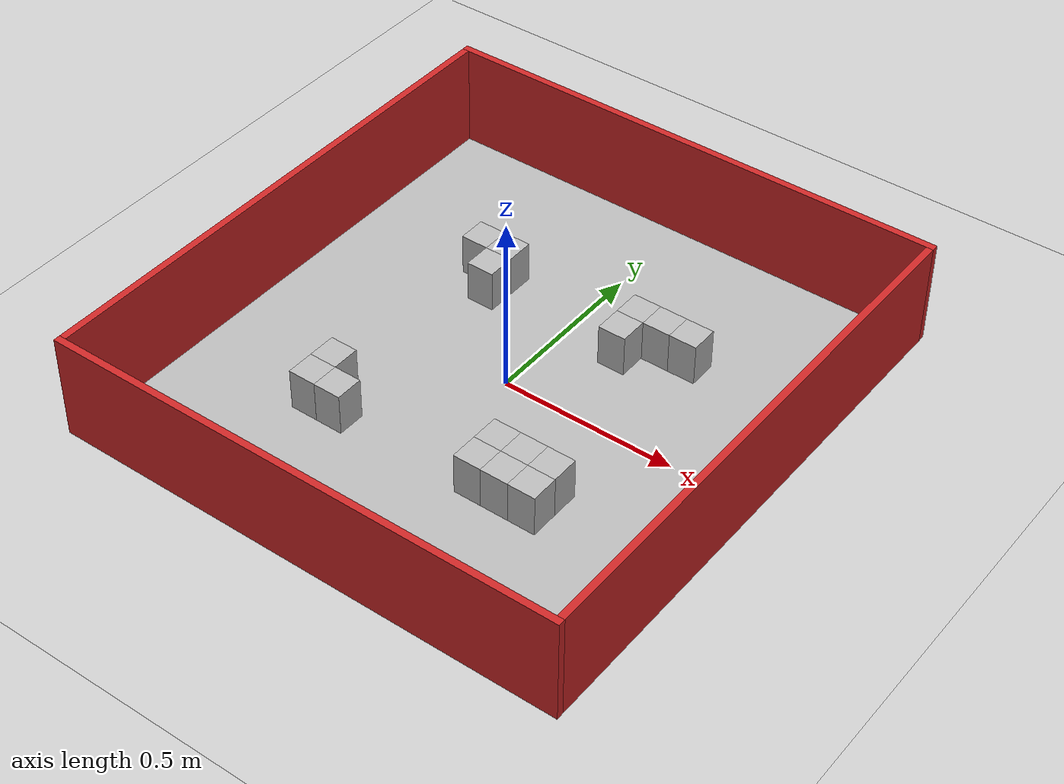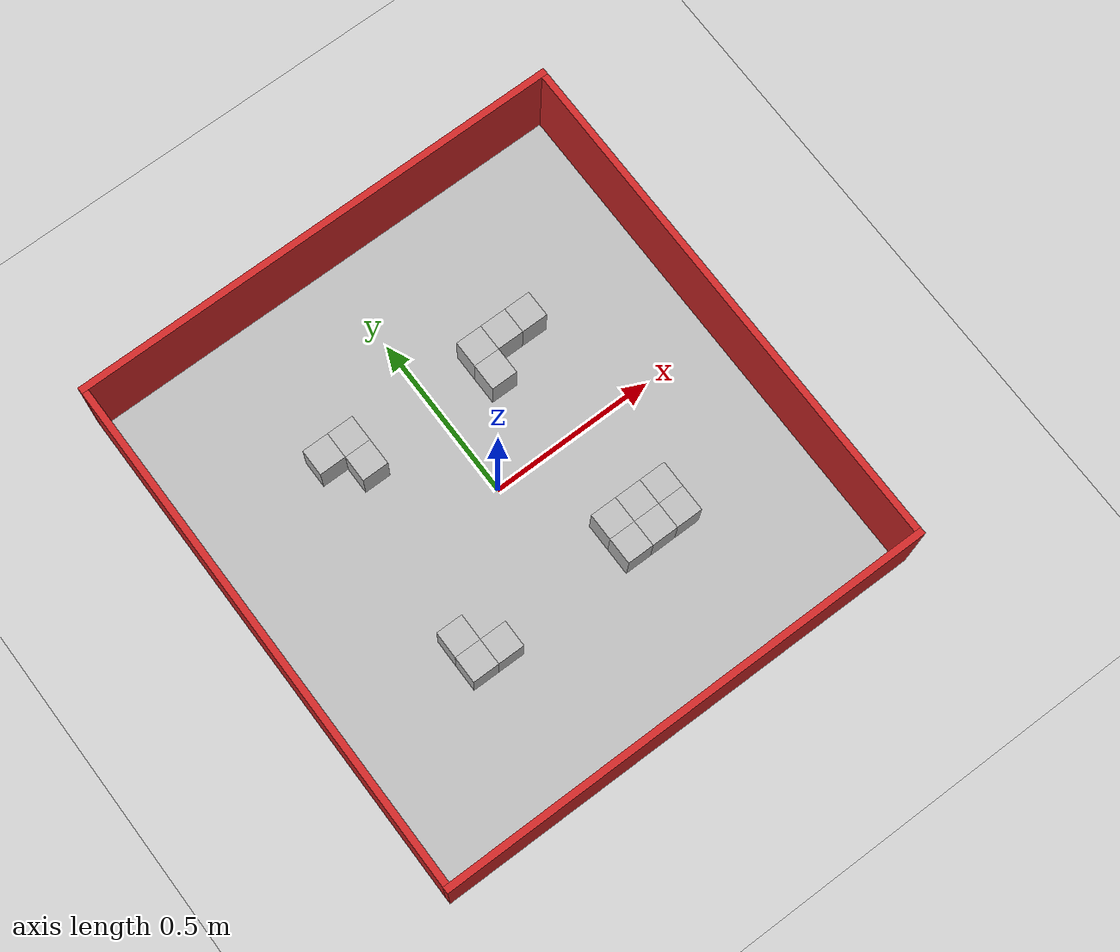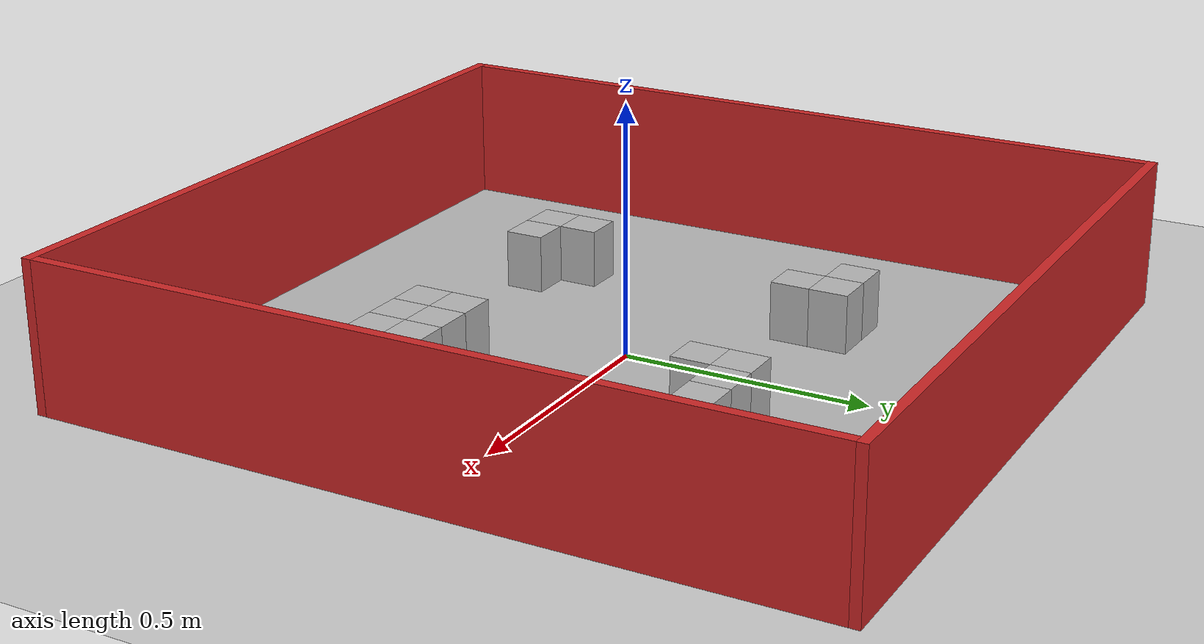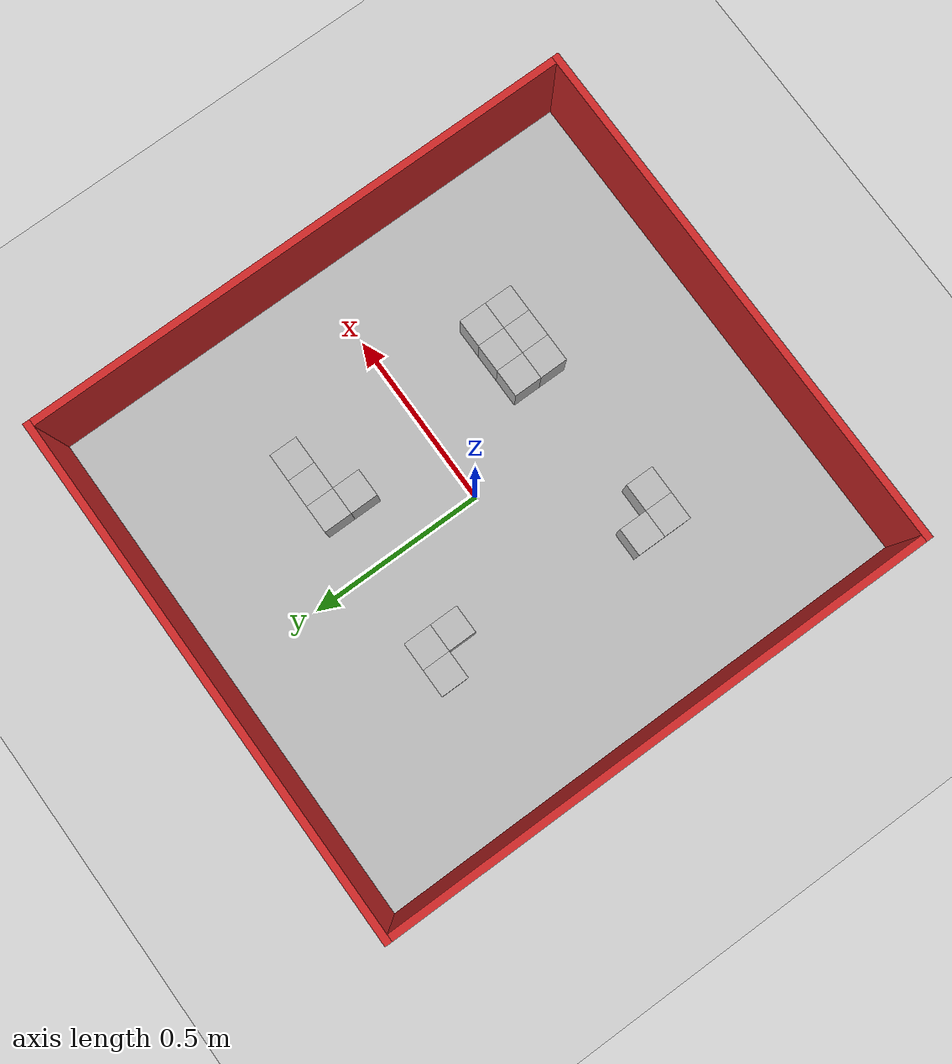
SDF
<?xml version="1.0"?>
<sdf version="1.6">
  <world name="laboratorio_real">

    <!-- ── Física ─────────────────────────────────────────────────── -->
    <physics type="ode">
      <real_time_update_rate>1000.0</real_time_update_rate>
      <max_step_size>0.001</max_step_size>
      <real_time_factor>1</real_time_factor>
    </physics>

    <!-- ── Plugins ────────────────────────────────────────────────── -->
    <plugin name="gazebo_ros_factory" filename="libgazebo_ros_factory.so"/>
    <plugin name="gazebo_ros_init"    filename="libgazebo_ros_init.so"/>

    <!-- ── Iluminación ───────────────────────────────────────────── -->
    <light name="sun" type="directional">
      <cast_shadows>true</cast_shadows>
      <pose>0 0 10 0 0 0</pose>
      <diffuse>0.8 0.8 0.8 1</diffuse>
      <specular>0.1 0.1 0.1 1</specular>
      <direction>-0.5 0.1 -0.9</direction>
    </light>

    <!-- ── Suelo de Gazebo (plano de física) ─────────────────────── -->
    <model name="ground_plane">
      <static>true</static>
      <link name="link">
        <collision name="collision">
          <geometry><plane><normal>0 0 1</normal></plane></geometry>
        </collision>
        <visual name="visual">
          <geometry><plane><normal>0 0 1</normal><size>10 10</size></plane></geometry>
          <material><script>
            <uri>file://media/materials/scripts/gazebo.material</uri>
            <name>Gazebo/Grey</name>
          </script></material>
        </visual>
      </link>
    </model>

    <!-- ── Recinto del laboratorio ───────────────────────────────── -->
    <include>
      <uri>model://kalman_lab_recinto</uri>
      <name>kalman_lab_recinto</name>
      <pose>0 0 0 0 0 0</pose>
    </include>

    <!-- ── Edificios (poses placeholder — ajustar manualmente) ───── -->
    <!--
      Cuadrante superior-izquierdo  → X-, Y+
      Cuadrante superior-derecho   → X+, Y+
      Cuadrante inferior-izquierdo → X-, Y-
      Cuadrante inferior-derecho   → X+, Y-
    -->

    <include>
      <uri>model://kalman_edificio_A</uri>
      <name>kalman_edificio_A</name>
      <pose>0.255388 0.284444 0 0 0 -1.5708</pose>
    </include>

    <include>
      <uri>model://kalman_edificio_B</uri>
      <name>kalman_edificio_B</name>
      <pose>0.255112 -0.303523 0 0 0 -1.5708</pose>
    </include>

    <include>
      <uri>model://kalman_edificio_C</uri>
      <name>kalman_edificio_C</name>
      <pose>-0.284461 0.285943 0 0 0 0</pose>
    </include>

    <include>
      <uri>model://kalman_edificio_D</uri>
      <name>kalman_edificio_D</name>
      <pose>-0.290682 -0.313646 0 0 0 1.56789</pose>
    </include>

    <gui fullscreen="0">
      <camera name="user_camera">
        <pose>-0.003514 -0.180003 2.74018 0 1.5698 0.000197</pose>
        <view_controller>orbit</view_controller>
        <projection_type>perspective</projection_type>
      </camera>
    </gui>

  </world>
</sdf>

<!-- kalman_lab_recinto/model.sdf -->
<sdf version="1.6">
  <model name="kalman_lab_recinto">
    <static>true</static>
    <link name="link">

      <!-- ── SUELO ─────────────────────────────────────────────── -->
      <collision name="col_suelo">
        <pose>0 0 0.0005 0 0 0</pose>
        <geometry><box><size>1.45 1.55 0.001</size></box></geometry>
      </collision>
      <visual name="vis_suelo">
        <pose>0 0 0.0005 0 0 0</pose>
        <geometry><box><size>1.45 1.55 0.001</size></box></geometry>
        <material><script>
          <uri>model://kalman_lab_recinto/materials/scripts</uri>
          <uri>model://kalman_lab_recinto/materials/textures</uri>
          <name>kalman_lab/Suelo</name>
        </script></material>
      </visual>

      <!-- ── PARED NORTE (Y+) ──────────────────────────────────── -->
      <collision name="col_norte">
        <pose>0 0.785 0.15 0 0 0</pose>
        <geometry><box><size>1.49 0.02 0.30</size></box></geometry>
      </collision>
      <visual name="vis_norte">
        <pose>0 0.785 0.15 0 0 0</pose>
        <geometry><box><size>1.49 0.02 0.30</size></box></geometry>
        <material><script>
          <uri>model://kalman_lab_recinto/materials/scripts</uri>
          <uri>model://kalman_lab_recinto/materials/textures</uri>
          <name>kalman_lab/Pared</name>
        </script></material>
      </visual>

      <!-- ── PARED SUR (Y-) ────────────────────────────────────── -->
      <collision name="col_sur">
        <pose>0 -0.785 0.15 0 0 0</pose>
        <geometry><box><size>1.49 0.02 0.30</size></box></geometry>
      </collision>
      <visual name="vis_sur">
        <pose>0 -0.785 0.15 0 0 0</pose>
        <geometry><box><size>1.49 0.02 0.30</size></box></geometry>
        <material><script>
          <uri>model://kalman_lab_recinto/materials/scripts</uri>
          <uri>model://kalman_lab_recinto/materials/textures</uri>
          <name>kalman_lab/Pared</name>
        </script></material>
      </visual>

      <!-- ── PARED ESTE (X+) ───────────────────────────────────── -->
      <collision name="col_este">
        <pose>0.735 0 0.15 0 0 0</pose>
        <geometry><box><size>0.02 1.55 0.30</size></box></geometry>
      </collision>
      <visual name="vis_este">
        <pose>0.735 0 0.15 0 0 0</pose>
        <geometry><box><size>0.02 1.55 0.30</size></box></geometry>
        <material><script>
          <uri>model://kalman_lab_recinto/materials/scripts</uri>
          <uri>model://kalman_lab_recinto/materials/textures</uri>
          <name>kalman_lab/Pared</name>
        </script></material>
      </visual>

      <!-- ── PARED OESTE (X-) ──────────────────────────────────── -->
      <collision name="col_oeste">
        <pose>-0.735 0 0.15 0 0 0</pose>
        <geometry><box><size>0.02 1.55 0.30</size></box></geometry>
      </collision>
      <visual name="vis_oeste">
        <pose>-0.735 0 0.15 0 0 0</pose>
        <geometry><box><size>0.02 1.55 0.30</size></box></geometry>
        <material><script>
          <uri>model://kalman_lab_recinto/materials/scripts</uri>
          <uri>model://kalman_lab_recinto/materials/textures</uri>
          <name>kalman_lab/Pared</name>
        </script></material>
      </visual>

    </link>
  </model>
</sdf>

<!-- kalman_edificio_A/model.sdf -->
<!--
  Planta (vista superior) — cada celda = 8x8 cm
    X .
    X .
    X X
-->
<sdf version="1.6">
  <model name="kalman_edificio_A">
    <static>true</static>
    <link name="link">

      <!-- caja 0: superior izquierda -->
      <collision name="col_0"><pose>-0.04  0.08 0.06 0 0 0</pose>
        <geometry><box><size>0.08 0.08 0.12</size></box></geometry>
      </collision>
      <visual name="vis_0"><pose>-0.04  0.08 0.06 0 0 0</pose>
        <geometry><box><size>0.08 0.08 0.12</size></box></geometry>
        <material><script>
          <uri>model://kalman_lab_box/materials/scripts</uri>
          <uri>model://kalman_lab_box/materials/textures</uri>
          <name>kalman_lab/Melamina</name>
        </script></material>
      </visual>

      <!-- caja 1: central izquierda -->
      <collision name="col_1"><pose>-0.04  0.00 0.06 0 0 0</pose>
        <geometry><box><size>0.08 0.08 0.12</size></box></geometry>
      </collision>
      <visual name="vis_1"><pose>-0.04  0.00 0.06 0 0 0</pose>
        <geometry><box><size>0.08 0.08 0.12</size></box></geometry>
        <material><script>
          <uri>model://kalman_lab_box/materials/scripts</uri>
          <uri>model://kalman_lab_box/materials/textures</uri>
          <name>kalman_lab/Melamina</name>
        </script></material>
      </visual>

      <!-- caja 2: inferior izquierda -->
      <collision name="col_2"><pose>-0.04 -0.08 0.06 0 0 0</pose>
        <geometry><box><size>0.08 0.08 0.12</size></box></geometry>
      </collision>
      <visual name="vis_2"><pose>-0.04 -0.08 0.06 0 0 0</pose>
        <geometry><box><size>0.08 0.08 0.12</size></box></geometry>
        <material><script>
          <uri>model://kalman_lab_box/materials/scripts</uri>
          <uri>model://kalman_lab_box/materials/textures</uri>
          <name>kalman_lab/Melamina</name>
        </script></material>
      </visual>

      <!-- caja 3: inferior derecha -->
      <collision name="col_3"><pose> 0.04 -0.08 0.06 0 0 0</pose>
        <geometry><box><size>0.08 0.08 0.12</size></box></geometry>
      </collision>
      <visual name="vis_3"><pose> 0.04 -0.08 0.06 0 0 0</pose>
        <geometry><box><size>0.08 0.08 0.12</size></box></geometry>
        <material><script>
          <uri>model://kalman_lab_box/materials/scripts</uri>
          <uri>model://kalman_lab_box/materials/textures</uri>
          <name>kalman_lab/Melamina</name>
        </script></material>
      </visual>

    </link>
  </model>
</sdf>

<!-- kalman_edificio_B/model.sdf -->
<!--
  Planta (vista superior) — cada celda = 8x8 cm
    X X
    X X
    X X
-->
<sdf version="1.6">
  <model name="kalman_edificio_B">
    <static>true</static>
    <link name="link">

      <collision name="col_0"><pose>-0.04  0.08 0.06 0 0 0</pose>
        <geometry><box><size>0.08 0.08 0.12</size></box></geometry>
      </collision>
      <visual name="vis_0"><pose>-0.04  0.08 0.06 0 0 0</pose>
        <geometry><box><size>0.08 0.08 0.12</size></box></geometry>
        <material><script>
          <uri>model://kalman_lab_box/materials/scripts</uri>
          <uri>model://kalman_lab_box/materials/textures</uri>
          <name>kalman_lab/Melamina</name>
        </script></material>
      </visual>

      <collision name="col_1"><pose> 0.04  0.08 0.06 0 0 0</pose>
        <geometry><box><size>0.08 0.08 0.12</size></box></geometry>
      </collision>
      <visual name="vis_1"><pose> 0.04  0.08 0.06 0 0 0</pose>
        <geometry><box><size>0.08 0.08 0.12</size></box></geometry>
        <material><script>
          <uri>model://kalman_lab_box/materials/scripts</uri>
          <uri>model://kalman_lab_box/materials/textures</uri>
          <name>kalman_lab/Melamina</name>
        </script></material>
      </visual>

      <collision name="col_2"><pose>-0.04  0.00 0.06 0 0 0</pose>
        <geometry><box><size>0.08 0.08 0.12</size></box></geometry>
      </collision>
      <visual name="vis_2"><pose>-0.04  0.00 0.06 0 0 0</pose>
        <geometry><box><size>0.08 0.08 0.12</size></box></geometry>
        <material><script>
          <uri>model://kalman_lab_box/materials/scripts</uri>
          <uri>model://kalman_lab_box/materials/textures</uri>
          <name>kalman_lab/Melamina</name>
        </script></material>
      </visual>

      <collision name="col_3"><pose> 0.04  0.00 0.06 0 0 0</pose>
        <geometry><box><size>0.08 0.08 0.12</size></box></geometry>
      </collision>
      <visual name="vis_3"><pose> 0.04  0.00 0.06 0 0 0</pose>
        <geometry><box><size>0.08 0.08 0.12</size></box></geometry>
        <material><script>
          <uri>model://kalman_lab_box/materials/scripts</uri>
          <uri>model://kalman_lab_box/materials/textures</uri>
          <name>kalman_lab/Melamina</name>
        </script></material>
      </visual>

      <collision name="col_4"><pose>-0.04 -0.08 0.06 0 0 0</pose>
        <geometry><box><size>0.08 0.08 0.12</size></box></geometry>
      </collision>
      <visual name="vis_4"><pose>-0.04 -0.08 0.06 0 0 0</pose>
        <geometry><box><size>0.08 0.08 0.12</size></box></geometry>
        <material><script>
          <uri>model://kalman_lab_box/materials/scripts</uri>
          <uri>model://kalman_lab_box/materials/textures</uri>
          <name>kalman_lab/Melamina</name>
        </script></material>
      </visual>

      <collision name="col_5"><pose> 0.04 -0.08 0.06 0 0 0</pose>
        <geometry><box><size>0.08 0.08 0.12</size></box></geometry>
      </collision>
      <visual name="vis_5"><pose> 0.04 -0.08 0.06 0 0 0</pose>
        <geometry><box><size>0.08 0.08 0.12</size></box></geometry>
        <material><script>
          <uri>model://kalman_lab_box/materials/scripts</uri>
          <uri>model://kalman_lab_box/materials/textures</uri>
          <name>kalman_lab/Melamina</name>
        </script></material>
      </visual>

    </link>
  </model>
</sdf>

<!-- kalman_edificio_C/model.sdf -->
<!--
  Planta (vista superior) — cada celda = 8x8 cm
    X X
    . X
-->
<sdf version="1.6">
  <model name="kalman_edificio_C">
    <static>true</static>
    <link name="link">

      <collision name="col_0"><pose>-0.04  0.04 0.06 0 0 0</pose>
        <geometry><box><size>0.08 0.08 0.12</size></box></geometry>
      </collision>
      <visual name="vis_0"><pose>-0.04  0.04 0.06 0 0 0</pose>
        <geometry><box><size>0.08 0.08 0.12</size></box></geometry>
        <material><script>
          <uri>model://kalman_lab_box/materials/scripts</uri>
          <uri>model://kalman_lab_box/materials/textures</uri>
          <name>kalman_lab/Melamina</name>
        </script></material>
      </visual>

      <collision name="col_1"><pose> 0.04  0.04 0.06 0 0 0</pose>
        <geometry><box><size>0.08 0.08 0.12</size></box></geometry>
      </collision>
      <visual name="vis_1"><pose> 0.04  0.04 0.06 0 0 0</pose>
        <geometry><box><size>0.08 0.08 0.12</size></box></geometry>
        <material><script>
          <uri>model://kalman_lab_box/materials/scripts</uri>
          <uri>model://kalman_lab_box/materials/textures</uri>
          <name>kalman_lab/Melamina</name>
        </script></material>
      </visual>

      <collision name="col_2"><pose> 0.04 -0.04 0.06 0 0 0</pose>
        <geometry><box><size>0.08 0.08 0.12</size></box></geometry>
      </collision>
      <visual name="vis_2"><pose> 0.04 -0.04 0.06 0 0 0</pose>
        <geometry><box><size>0.08 0.08 0.12</size></box></geometry>
        <material><script>
          <uri>model://kalman_lab_box/materials/scripts</uri>
          <uri>model://kalman_lab_box/materials/textures</uri>
          <name>kalman_lab/Melamina</name>
        </script></material>
      </visual>

    </link>
  </model>
</sdf>

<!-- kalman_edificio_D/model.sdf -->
<!--
  Planta (vista superior) — cada celda = 8x8 cm
    X X
    X .
-->
<sdf version="1.6">
  <model name="kalman_edificio_D">
    <static>true</static>
    <link name="link">

      <collision name="col_0"><pose>-0.04  0.04 0.06 0 0 0</pose>
        <geometry><box><size>0.08 0.08 0.12</size></box></geometry>
      </collision>
      <visual name="vis_0"><pose>-0.04  0.04 0.06 0 0 0</pose>
        <geometry><box><size>0.08 0.08 0.12</size></box></geometry>
        <material><script>
          <uri>model://kalman_lab_box/materials/scripts</uri>
          <uri>model://kalman_lab_box/materials/textures</uri>
          <name>kalman_lab/Melamina</name>
        </script></material>
      </visual>

      <collision name="col_1"><pose> 0.04  0.04 0.06 0 0 0</pose>
        <geometry><box><size>0.08 0.08 0.12</size></box></geometry>
      </collision>
      <visual name="vis_1"><pose> 0.04  0.04 0.06 0 0 0</pose>
        <geometry><box><size>0.08 0.08 0.12</size></box></geometry>
        <material><script>
          <uri>model://kalman_lab_box/materials/scripts</uri>
          <uri>model://kalman_lab_box/materials/textures</uri>
          <name>kalman_lab/Melamina</name>
        </script></material>
      </visual>

      <collision name="col_2"><pose>-0.04 -0.04 0.06 0 0 0</pose>
        <geometry><box><size>0.08 0.08 0.12</size></box></geometry>
      </collision>
      <visual name="vis_2"><pose>-0.04 -0.04 0.06 0 0 0</pose>
        <geometry><box><size>0.08 0.08 0.12</size></box></geometry>
        <material><script>
          <uri>model://kalman_lab_box/materials/scripts</uri>
          <uri>model://kalman_lab_box/materials/textures</uri>
          <name>kalman_lab/Melamina</name>
        </script></material>
      </visual>

    </link>
  </model>
</sdf>
